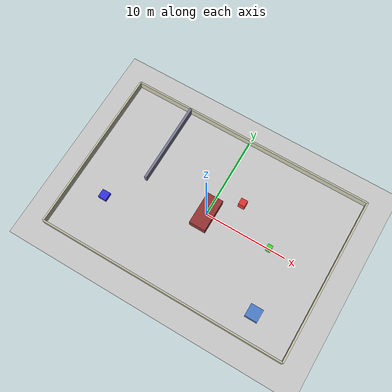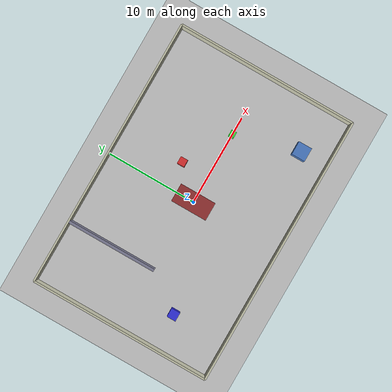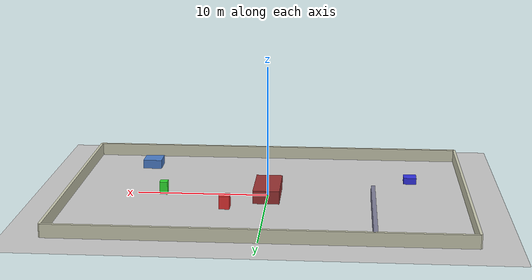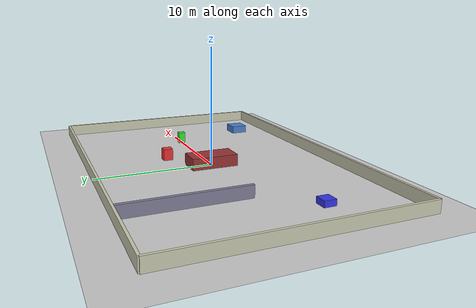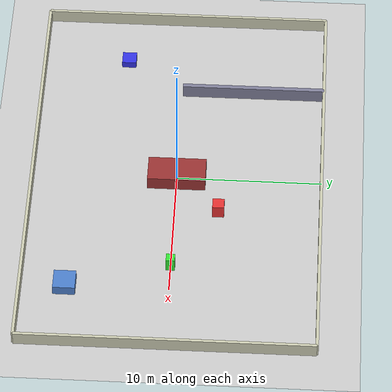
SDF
<?xml version="1.0"?>
<sdf version="1.6">
  <world name="dynamic_room">

    <include><uri>model://sun</uri></include>
    <include><uri>model://ground_plane</uri></include>

    <physics name="default_physics" type="ode">
      <max_step_size>0.005</max_step_size>
      <real_time_factor>1.0</real_time_factor>
    </physics>

    <!-- ═══════════ Closed room 30m × 20m (same shell as explore_room) ═══════════ -->
    <model name="wall_n">
      <pose>0 10.0 0.5 0 0 0</pose>
      <static>true</static>
      <link name="link">
        <collision name="collision"><geometry><box><size>30.0 0.2 1.0</size></box></geometry></collision>
        <visual name="visual"><geometry><box><size>30.0 0.2 1.0</size></box></geometry>
          <material><ambient>0.8 0.8 0.7 1</ambient><diffuse>0.8 0.8 0.7 1</diffuse></material>
        </visual>
      </link>
    </model>
    <model name="wall_s">
      <pose>0 -10.0 0.5 0 0 0</pose>
      <static>true</static>
      <link name="link">
        <collision name="collision"><geometry><box><size>30.0 0.2 1.0</size></box></geometry></collision>
        <visual name="visual"><geometry><box><size>30.0 0.2 1.0</size></box></geometry>
          <material><ambient>0.8 0.8 0.7 1</ambient><diffuse>0.8 0.8 0.7 1</diffuse></material>
        </visual>
      </link>
    </model>
    <model name="wall_e">
      <pose>15.0 0 0.5 0 0 0</pose>
      <static>true</static>
      <link name="link">
        <collision name="collision"><geometry><box><size>0.2 20.0 1.0</size></box></geometry></collision>
        <visual name="visual"><geometry><box><size>0.2 20.0 1.0</size></box></geometry>
          <material><ambient>0.8 0.8 0.7 1</ambient><diffuse>0.8 0.8 0.7 1</diffuse></material>
        </visual>
      </link>
    </model>
    <model name="wall_w">
      <pose>-15.0 0 0.5 0 0 0</pose>
      <static>true</static>
      <link name="link">
        <collision name="collision"><geometry><box><size>0.2 20.0 1.0</size></box></geometry></collision>
        <visual name="visual"><geometry><box><size>0.2 20.0 1.0</size></box></geometry>
          <material><ambient>0.8 0.8 0.7 1</ambient><diffuse>0.8 0.8 0.7 1</diffuse></material>
        </visual>
      </link>
    </model>

    <!-- ═══════════ Static interior (kept sparse: room for the movers) ═══════════ -->
    <!-- Central wall block -->
    <model name="central_block">
      <pose>0 0 0.5 0 0 0</pose>
      <static>true</static>
      <link name="link">
        <collision name="collision"><geometry><box><size>2.0 4.0 1.0</size></box></geometry></collision>
        <visual name="visual"><geometry><box><size>2.0 4.0 1.0</size></box></geometry>
          <material><ambient>0.6 0.2 0.2 1</ambient><diffuse>0.6 0.2 0.2 1</diffuse></material>
        </visual>
      </link>
    </model>
    <!-- West partition with passable gap at y∈[-5,-0.5] -->
    <model name="west_part">
      <pose>-8.0 5.0 0.5 0 0 0</pose>
      <static>true</static>
      <link name="link">
        <collision name="collision"><geometry><box><size>0.3 10.0 1.0</size></box></geometry></collision>
        <visual name="visual"><geometry><box><size>0.3 10.0 1.0</size></box></geometry>
          <material><ambient>0.5 0.5 0.6 1</ambient><diffuse>0.5 0.5 0.6 1</diffuse></material>
        </visual>
      </link>
    </model>
    <!-- SE corner static cluster -->
    <model name="se_box1">
      <pose>10.0 -7.0 0.35 0 0 0</pose>
      <static>true</static>
      <link name="link">
        <collision name="collision"><geometry><box><size>1.5 1.5 0.7</size></box></geometry></collision>
        <visual name="visual"><geometry><box><size>1.5 1.5 0.7</size></box></geometry>
          <material><ambient>0.3 0.5 0.8 1</ambient><diffuse>0.3 0.5 0.8 1</diffuse></material>
        </visual>
      </link>
    </model>

    <!-- ═══════════ Dynamic movers (frictionless, wall-confined, LiDAR-visible) ═══════════ -->

    <!-- Mover 1: frictionless box, new random heading every 4 s (speed ≤ 0.8 m/s) -->
    <model name="mover_1">
      <pose>3.0 3.0 0.5 0 0 0</pose>
      <link name="link">
        <collision name="collision">
          <geometry><box><size>0.8 0.8 1.0</size></box></geometry>
          <surface>
            <friction><ode><mu>0.0</mu><mu2>0.0</mu2></ode></friction>
          </surface>
        </collision>
        <visual name="visual">
          <geometry><box><size>0.8 0.8 1.0</size></box></geometry>
          <material><ambient>0.9 0.2 0.2 1</ambient><diffuse>0.9 0.2 0.2 1</diffuse></material>
        </visual>
      </link>
      <plugin name="random_1" filename="libRandomVelocityPlugin.so">
        <link>link</link>
        <initial_velocity>0 0.6 0</initial_velocity>
        <velocity_factor>0.8</velocity_factor>
        <update_period>4</update_period>
        <min_z>0</min_z><max_z>0</max_z>
      </plugin>
    </model>

    <!-- Mover 2: smaller box, faster heading changes (every 3 s, speed ≤ 0.6 m/s) -->
    <model name="mover_2">
      <pose>8.0 0.0 0.5 0 0 0</pose>
      <link name="link">
        <collision name="collision">
          <geometry><box><size>0.6 0.6 1.0</size></box></geometry>
          <surface>
            <friction><ode><mu>0.0</mu><mu2>0.0</mu2></ode></friction>
          </surface>
        </collision>
        <visual name="visual">
          <geometry><box><size>0.6 0.6 1.0</size></box></geometry>
          <material><ambient>0.2 0.9 0.2 1</ambient><diffuse>0.2 0.9 0.2 1</diffuse></material>
        </visual>
      </link>
      <plugin name="random_2" filename="libRandomVelocityPlugin.so">
        <link>link</link>
        <initial_velocity>0 0.5 0</initial_velocity>
        <velocity_factor>0.6</velocity_factor>
        <update_period>3</update_period>
        <min_z>0</min_z><max_z>0</max_z>
      </plugin>
    </model>

    <!-- Mover 3: low half-height box (0.5 m), slower heading changes (every 5 s) -->
    <model name="mover_3">
      <pose>-11.0 -4.0 0.25 0 0 0</pose>
      <link name="link">
        <collision name="collision">
          <geometry><box><size>1.0 1.0 0.5</size></box></geometry>
          <surface>
            <friction><ode><mu>0.0</mu><mu2>0.0</mu2></ode></friction>
          </surface>
        </collision>
        <visual name="visual">
          <geometry><box><size>1.0 1.0 0.5</size></box></geometry>
          <material><ambient>0.2 0.2 0.9 1</ambient><diffuse>0.2 0.2 0.9 1</diffuse></material>
        </visual>
      </link>
      <plugin name="random_3" filename="libRandomVelocityPlugin.so">
        <link>link</link>
        <initial_velocity>0 0.4 0</initial_velocity>
        <velocity_factor>0.5</velocity_factor>
        <update_period>5</update_period>
        <min_z>0</min_z><max_z>0</max_z>
      </plugin>
    </model>

  </world>
</sdf>
